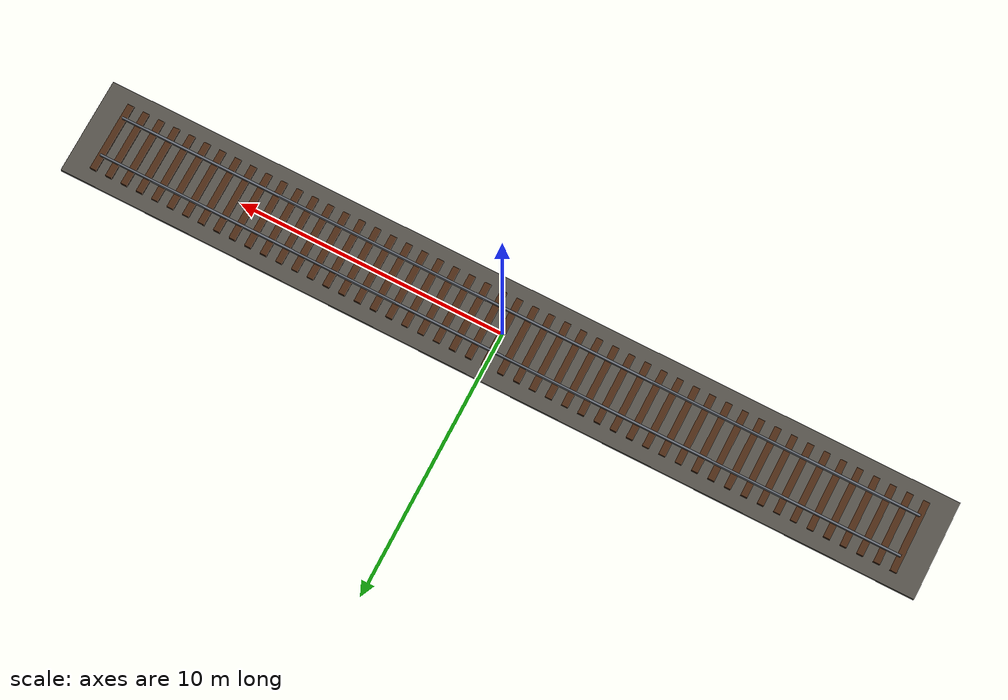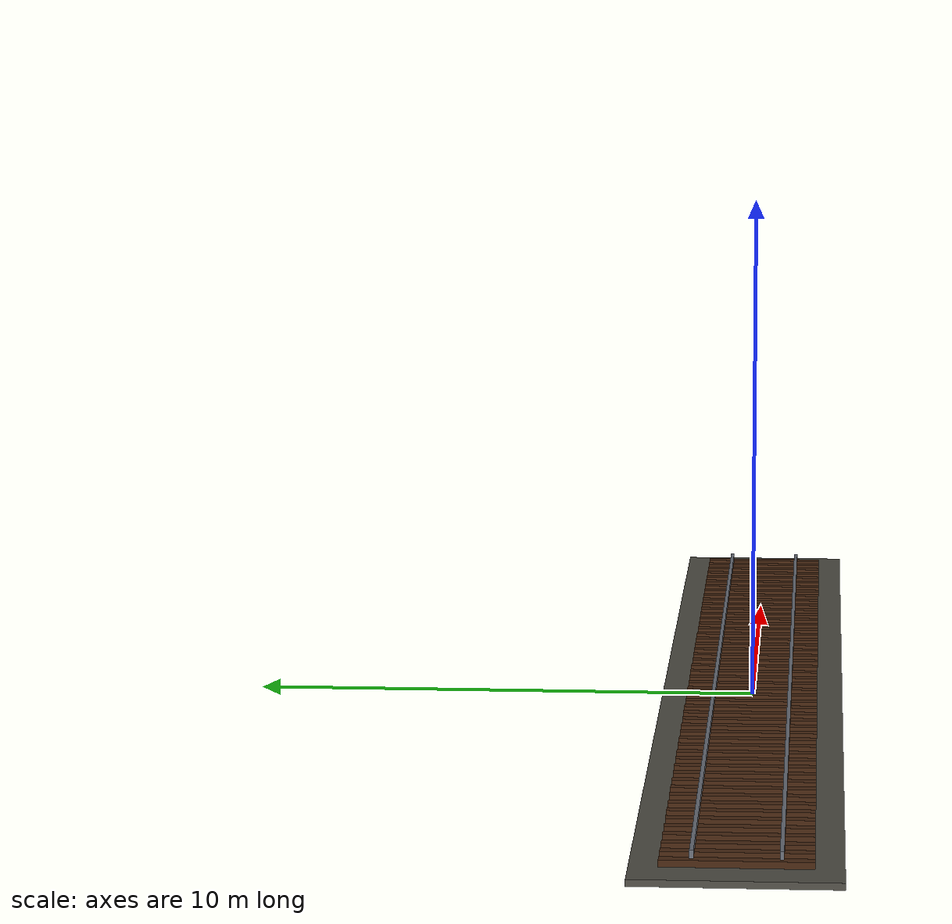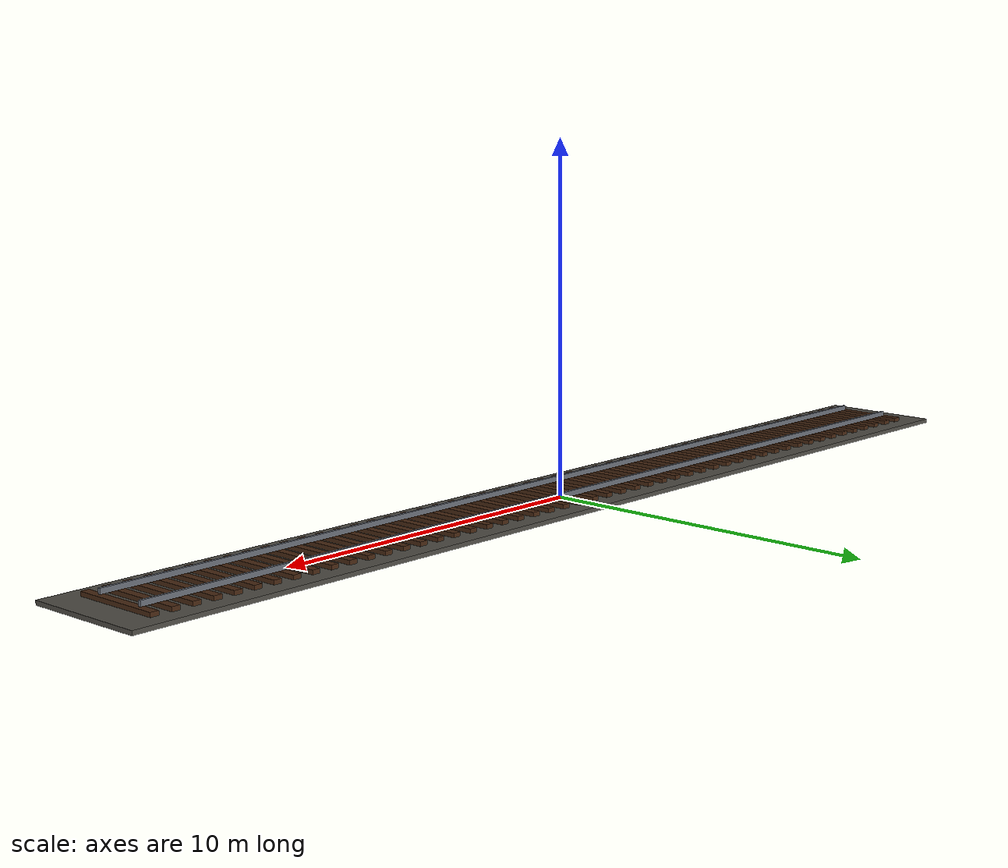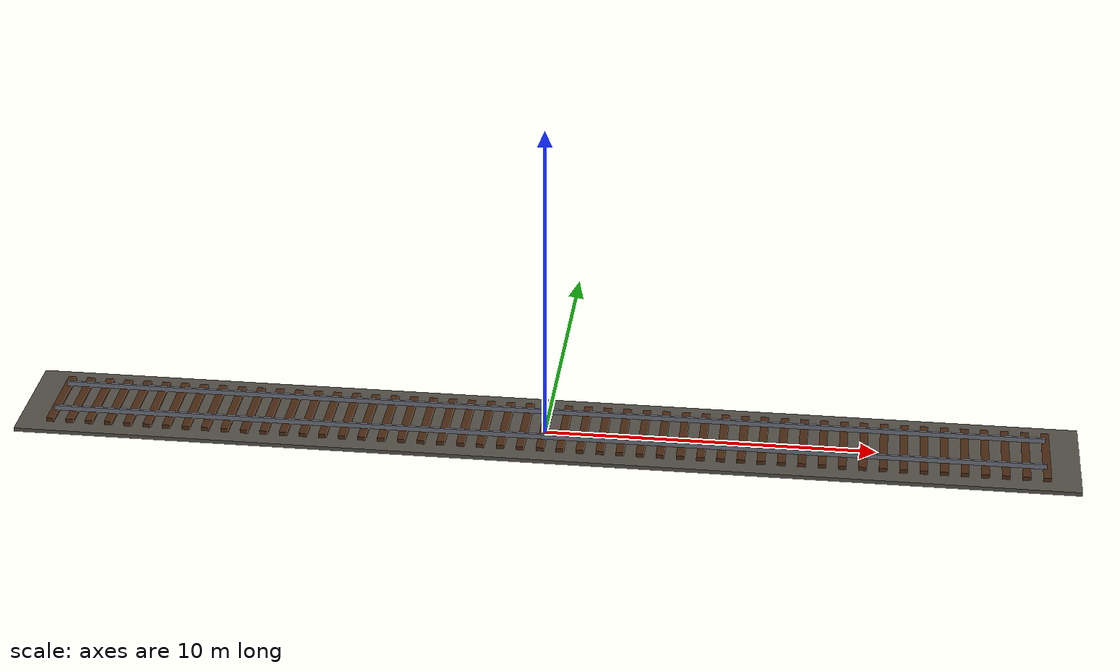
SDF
<?xml version="1.0" encoding="UTF-8"?>
<!-- Generated by tools/generate_gazebo_rail_world.py. -->
<sdf version="1.9">
  <model name="rail_track">
    <static>true</static>
    <link name="track">
      <collision name="ballast_collision">
        <pose>0 0 0.060 0 0 0</pose>
        <geometry><box><size>32.000 3.600 0.120</size></box></geometry>
      </collision>
      <visual name="ballast_visual">
        <pose>0 0 0.060 0 0 0</pose>
        <geometry><box><size>32.000 3.600 0.120</size></box></geometry>
        <material>
          <ambient>0.22 0.22 0.20 1</ambient>
          <diffuse>0.32 0.31 0.28 1</diffuse>
          <specular>0.04 0.04 0.04 1</specular>
        </material>
      </visual>
      <collision name="sleeper_000_collision">
        <pose>-15.000 0 0.160 0 0 0</pose>
        <geometry><box><size>0.240 2.600 0.160</size></box></geometry>
      </collision>
      <visual name="sleeper_000_visual">
        <pose>-15.000 0 0.160 0 0 0</pose>
        <geometry><box><size>0.240 2.600 0.160</size></box></geometry>
        <material>
          <ambient>0.20 0.11 0.055 1</ambient>
          <diffuse>0.29 0.16 0.075 1</diffuse>
          <specular>0.015 0.015 0.015 1</specular>
        </material>
      </visual>
      <collision name="sleeper_001_collision">
        <pose>-14.400 0 0.160 0 0 0</pose>
        <geometry><box><size>0.240 2.600 0.160</size></box></geometry>
      </collision>
      <visual name="sleeper_001_visual">
        <pose>-14.400 0 0.160 0 0 0</pose>
        <geometry><box><size>0.240 2.600 0.160</size></box></geometry>
        <material>
          <ambient>0.20 0.11 0.055 1</ambient>
          <diffuse>0.29 0.16 0.075 1</diffuse>
          <specular>0.015 0.015 0.015 1</specular>
        </material>
      </visual>
      <collision name="sleeper_002_collision">
        <pose>-13.800 0 0.160 0 0 0</pose>
        <geometry><box><size>0.240 2.600 0.160</size></box></geometry>
      </collision>
      <visual name="sleeper_002_visual">
        <pose>-13.800 0 0.160 0 0 0</pose>
        <geometry><box><size>0.240 2.600 0.160</size></box></geometry>
        <material>
          <ambient>0.20 0.11 0.055 1</ambient>
          <diffuse>0.29 0.16 0.075 1</diffuse>
          <specular>0.015 0.015 0.015 1</specular>
        </material>
      </visual>
      <collision name="sleeper_003_collision">
        <pose>-13.200 0 0.160 0 0 0</pose>
        <geometry><box><size>0.240 2.600 0.160</size></box></geometry>
      </collision>
      <visual name="sleeper_003_visual">
        <pose>-13.200 0 0.160 0 0 0</pose>
        <geometry><box><size>0.240 2.600 0.160</size></box></geometry>
        <material>
          <ambient>0.20 0.11 0.055 1</ambient>
          <diffuse>0.29 0.16 0.075 1</diffuse>
          <specular>0.015 0.015 0.015 1</specular>
        </material>
      </visual>
      <collision name="sleeper_004_collision">
        <pose>-12.600 0 0.160 0 0 0</pose>
        <geometry><box><size>0.240 2.600 0.160</size></box></geometry>
      </collision>
      <visual name="sleeper_004_visual">
        <pose>-12.600 0 0.160 0 0 0</pose>
        <geometry><box><size>0.240 2.600 0.160</size></box></geometry>
        <material>
          <ambient>0.20 0.11 0.055 1</ambient>
          <diffuse>0.29 0.16 0.075 1</diffuse>
          <specular>0.015 0.015 0.015 1</specular>
        </material>
      </visual>
      <collision name="sleeper_005_collision">
        <pose>-12.000 0 0.160 0 0 0</pose>
        <geometry><box><size>0.240 2.600 0.160</size></box></geometry>
      </collision>
      <visual name="sleeper_005_visual">
        <pose>-12.000 0 0.160 0 0 0</pose>
        <geometry><box><size>0.240 2.600 0.160</size></box></geometry>
        <material>
          <ambient>0.20 0.11 0.055 1</ambient>
          <diffuse>0.29 0.16 0.075 1</diffuse>
          <specular>0.015 0.015 0.015 1</specular>
        </material>
      </visual>
      <collision name="sleeper_006_collision">
        <pose>-11.400 0 0.160 0 0 0</pose>
        <geometry><box><size>0.240 2.600 0.160</size></box></geometry>
      </collision>
      <visual name="sleeper_006_visual">
        <pose>-11.400 0 0.160 0 0 0</pose>
        <geometry><box><size>0.240 2.600 0.160</size></box></geometry>
        <material>
          <ambient>0.20 0.11 0.055 1</ambient>
          <diffuse>0.29 0.16 0.075 1</diffuse>
          <specular>0.015 0.015 0.015 1</specular>
        </material>
      </visual>
      <collision name="sleeper_007_collision">
        <pose>-10.800 0 0.160 0 0 0</pose>
        <geometry><box><size>0.240 2.600 0.160</size></box></geometry>
      </collision>
      <visual name="sleeper_007_visual">
        <pose>-10.800 0 0.160 0 0 0</pose>
        <geometry><box><size>0.240 2.600 0.160</size></box></geometry>
        <material>
          <ambient>0.20 0.11 0.055 1</ambient>
          <diffuse>0.29 0.16 0.075 1</diffuse>
          <specular>0.015 0.015 0.015 1</specular>
        </material>
      </visual>
      <collision name="sleeper_008_collision">
        <pose>-10.200 0 0.160 0 0 0</pose>
        <geometry><box><size>0.240 2.600 0.160</size></box></geometry>
      </collision>
      <visual name="sleeper_008_visual">
        <pose>-10.200 0 0.160 0 0 0</pose>
        <geometry><box><size>0.240 2.600 0.160</size></box></geometry>
        <material>
          <ambient>0.20 0.11 0.055 1</ambient>
          <diffuse>0.29 0.16 0.075 1</diffuse>
          <specular>0.015 0.015 0.015 1</specular>
        </material>
      </visual>
      <collision name="sleeper_009_collision">
        <pose>-9.600 0 0.160 0 0 0</pose>
        <geometry><box><size>0.240 2.600 0.160</size></box></geometry>
      </collision>
      <visual name="sleeper_009_visual">
        <pose>-9.600 0 0.160 0 0 0</pose>
        <geometry><box><size>0.240 2.600 0.160</size></box></geometry>
        <material>
          <ambient>0.20 0.11 0.055 1</ambient>
          <diffuse>0.29 0.16 0.075 1</diffuse>
          <specular>0.015 0.015 0.015 1</specular>
        </material>
      </visual>
      <collision name="sleeper_010_collision">
        <pose>-9.000 0 0.160 0 0 0</pose>
        <geometry><box><size>0.240 2.600 0.160</size></box></geometry>
      </collision>
      <visual name="sleeper_010_visual">
        <pose>-9.000 0 0.160 0 0 0</pose>
        <geometry><box><size>0.240 2.600 0.160</size></box></geometry>
        <material>
          <ambient>0.20 0.11 0.055 1</ambient>
          <diffuse>0.29 0.16 0.075 1</diffuse>
          <specular>0.015 0.015 0.015 1</specular>
        </material>
      </visual>
      <collision name="sleeper_011_collision">
        <pose>-8.400 0 0.160 0 0 0</pose>
        <geometry><box><size>0.240 2.600 0.160</size></box></geometry>
      </collision>
      <visual name="sleeper_011_visual">
        <pose>-8.400 0 0.160 0 0 0</pose>
        <geometry><box><size>0.240 2.600 0.160</size></box></geometry>
        <material>
          <ambient>0.20 0.11 0.055 1</ambient>
          <diffuse>0.29 0.16 0.075 1</diffuse>
          <specular>0.015 0.015 0.015 1</specular>
        </material>
      </visual>
      <collision name="sleeper_012_collision">
        <pose>-7.800 0 0.160 0 0 0</pose>
        <geometry><box><size>0.240 2.600 0.160</size></box></geometry>
      </collision>
      <visual name="sleeper_012_visual">
        <pose>-7.800 0 0.160 0 0 0</pose>
        <geometry><box><size>0.240 2.600 0.160</size></box></geometry>
        <material>
          <ambient>0.20 0.11 0.055 1</ambient>
          <diffuse>0.29 0.16 0.075 1</diffuse>
          <specular>0.015 0.015 0.015 1</specular>
        </material>
      </visual>
      <collision name="sleeper_013_collision">
        <pose>-7.200 0 0.160 0 0 0</pose>
        <geometry><box><size>0.240 2.600 0.160</size></box></geometry>
      </collision>
      <visual name="sleeper_013_visual">
        <pose>-7.200 0 0.160 0 0 0</pose>
        <geometry><box><size>0.240 2.600 0.160</size></box></geometry>
        <material>
          <ambient>0.20 0.11 0.055 1</ambient>
          <diffuse>0.29 0.16 0.075 1</diffuse>
          <specular>0.015 0.015 0.015 1</specular>
        </material>
      </visual>
      <collision name="sleeper_014_collision">
        <pose>-6.600 0 0.160 0 0 0</pose>
        <geometry><box><size>0.240 2.600 0.160</size></box></geometry>
      </collision>
      <visual name="sleeper_014_visual">
        <pose>-6.600 0 0.160 0 0 0</pose>
        <geometry><box><size>0.240 2.600 0.160</size></box></geometry>
        <material>
          <ambient>0.20 0.11 0.055 1</ambient>
          <diffuse>0.29 0.16 0.075 1</diffuse>
          <specular>0.015 0.015 0.015 1</specular>
        </material>
      </visual>
      <collision name="sleeper_015_collision">
        <pose>-6.000 0 0.160 0 0 0</pose>
        <geometry><box><size>0.240 2.600 0.160</size></box></geometry>
      </collision>
      <visual name="sleeper_015_visual">
        <pose>-6.000 0 0.160 0 0 0</pose>
        <geometry><box><size>0.240 2.600 0.160</size></box></geometry>
        <material>
          <ambient>0.20 0.11 0.055 1</ambient>
          <diffuse>0.29 0.16 0.075 1</diffuse>
          <specular>0.015 0.015 0.015 1</specular>
        </material>
      </visual>
      <collision name="sleeper_016_collision">
        <pose>-5.400 0 0.160 0 0 0</pose>
        <geometry><box><size>0.240 2.600 0.160</size></box></geometry>
      </collision>
      <visual name="sleeper_016_visual">
        <pose>-5.400 0 0.160 0 0 0</pose>
        <geometry><box><size>0.240 2.600 0.160</size></box></geometry>
        <material>
          <ambient>0.20 0.11 0.055 1</ambient>
          <diffuse>0.29 0.16 0.075 1</diffuse>
          <specular>0.015 0.015 0.015 1</specular>
        </material>
      </visual>
      <collision name="sleeper_017_collision">
        <pose>-4.800 0 0.160 0 0 0</pose>
        <geometry><box><size>0.240 2.600 0.160</size></box></geometry>
      </collision>
      <visual name="sleeper_017_visual">
        <pose>-4.800 0 0.160 0 0 0</pose>
        <geometry><box><size>0.240 2.600 0.160</size></box></geometry>
        <material>
          <ambient>0.20 0.11 0.055 1</ambient>
          <diffuse>0.29 0.16 0.075 1</diffuse>
          <specular>0.015 0.015 0.015 1</specular>
        </material>
      </visual>
      <collision name="sleeper_018_collision">
        <pose>-4.200 0 0.160 0 0 0</pose>
        <geometry><box><size>0.240 2.600 0.160</size></box></geometry>
      </collision>
      <visual name="sleeper_018_visual">
        <pose>-4.200 0 0.160 0 0 0</pose>
        <geometry><box><size>0.240 2.600 0.160</size></box></geometry>
        <material>
          <ambient>0.20 0.11 0.055 1</ambient>
          <diffuse>0.29 0.16 0.075 1</diffuse>
          <specular>0.015 0.015 0.015 1</specular>
        </material>
      </visual>
      <collision name="sleeper_019_collision">
        <pose>-3.600 0 0.160 0 0 0</pose>
        <geometry><box><size>0.240 2.600 0.160</size></box></geometry>
      </collision>
      <visual name="sleeper_019_visual">
        <pose>-3.600 0 0.160 0 0 0</pose>
        <geometry><box><size>0.240 2.600 0.160</size></box></geometry>
        <material>
          <ambient>0.20 0.11 0.055 1</ambient>
          <diffuse>0.29 0.16 0.075 1</diffuse>
          <specular>0.015 0.015 0.015 1</specular>
        </material>
      </visual>
      <collision name="sleeper_020_collision">
        <pose>-3.000 0 0.160 0 0 0</pose>
        <geometry><box><size>0.240 2.600 0.160</size></box></geometry>
      </collision>
      <visual name="sleeper_020_visual">
        <pose>-3.000 0 0.160 0 0 0</pose>
        <geometry><box><size>0.240 2.600 0.160</size></box></geometry>
        <material>
          <ambient>0.20 0.11 0.055 1</ambient>
          <diffuse>0.29 0.16 0.075 1</diffuse>
          <specular>0.015 0.015 0.015 1</specular>
        </material>
      </visual>
      <collision name="sleeper_021_collision">
        <pose>-2.400 0 0.160 0 0 0</pose>
        <geometry><box><size>0.240 2.600 0.160</size></box></geometry>
      </collision>
      <visual name="sleeper_021_visual">
        <pose>-2.400 0 0.160 0 0 0</pose>
        <geometry><box><size>0.240 2.600 0.160</size></box></geometry>
        <material>
          <ambient>0.20 0.11 0.055 1</ambient>
          <diffuse>0.29 0.16 0.075 1</diffuse>
          <specular>0.015 0.015 0.015 1</specular>
        </material>
      </visual>
      <collision name="sleeper_022_collision">
        <pose>-1.800 0 0.160 0 0 0</pose>
        <geometry><box><size>0.240 2.600 0.160</size></box></geometry>
      </collision>
      <visual name="sleeper_022_visual">
        <pose>-1.800 0 0.160 0 0 0</pose>
        <geometry><box><size>0.240 2.600 0.160</size></box></geometry>
        <material>
          <ambient>0.20 0.11 0.055 1</ambient>
          <diffuse>0.29 0.16 0.075 1</diffuse>
          <specular>0.015 0.015 0.015 1</specular>
        </material>
      </visual>
      <collision name="sleeper_023_collision">
        <pose>-1.200 0 0.160 0 0 0</pose>
        <geometry><box><size>0.240 2.600 0.160</size></box></geometry>
      </collision>
      <visual name="sleeper_023_visual">
        <pose>-1.200 0 0.160 0 0 0</pose>
        <geometry><box><size>0.240 2.600 0.160</size></box></geometry>
        <material>
          <ambient>0.20 0.11 0.055 1</ambient>
          <diffuse>0.29 0.16 0.075 1</diffuse>
          <specular>0.015 0.015 0.015 1</specular>
        </material>
      </visual>
      <collision name="sleeper_024_collision">
        <pose>-0.600 0 0.160 0 0 0</pose>
        <geometry><box><size>0.240 2.600 0.160</size></box></geometry>
      </collision>
      <visual name="sleeper_024_visual">
        <pose>-0.600 0 0.160 0 0 0</pose>
        <geometry><box><size>0.240 2.600 0.160</size></box></geometry>
        <material>
          <ambient>0.20 0.11 0.055 1</ambient>
          <diffuse>0.29 0.16 0.075 1</diffuse>
          <specular>0.015 0.015 0.015 1</specular>
        </material>
      </visual>
      <collision name="sleeper_025_collision">
        <pose>0.000 0 0.160 0 0 0</pose>
        <geometry><box><size>0.240 2.600 0.160</size></box></geometry>
      </collision>
      <visual name="sleeper_025_visual">
        <pose>0.000 0 0.160 0 0 0</pose>
        <geometry><box><size>0.240 2.600 0.160</size></box></geometry>
        <material>
          <ambient>0.20 0.11 0.055 1</ambient>
          <diffuse>0.29 0.16 0.075 1</diffuse>
          <specular>0.015 0.015 0.015 1</specular>
        </material>
      </visual>
      <collision name="sleeper_026_collision">
        <pose>0.600 0 0.160 0 0 0</pose>
        <geometry><box><size>0.240 2.600 0.160</size></box></geometry>
      </collision>
      <visual name="sleeper_026_visual">
        <pose>0.600 0 0.160 0 0 0</pose>
        <geometry><box><size>0.240 2.600 0.160</size></box></geometry>
        <material>
          <ambient>0.20 0.11 0.055 1</ambient>
          <diffuse>0.29 0.16 0.075 1</diffuse>
          <specular>0.015 0.015 0.015 1</specular>
        </material>
      </visual>
      <collision name="sleeper_027_collision">
        <pose>1.200 0 0.160 0 0 0</pose>
        <geometry><box><size>0.240 2.600 0.160</size></box></geometry>
      </collision>
      <visual name="sleeper_027_visual">
        <pose>1.200 0 0.160 0 0 0</pose>
        <geometry><box><size>0.240 2.600 0.160</size></box></geometry>
        <material>
          <ambient>0.20 0.11 0.055 1</ambient>
          <diffuse>0.29 0.16 0.075 1</diffuse>
          <specular>0.015 0.015 0.015 1</specular>
        </material>
      </visual>
      <collision name="sleeper_028_collision">
        <pose>1.800 0 0.160 0 0 0</pose>
        <geometry><box><size>0.240 2.600 0.160</size></box></geometry>
      </collision>
      <visual name="sleeper_028_visual">
        <pose>1.800 0 0.160 0 0 0</pose>
        <geometry><box><size>0.240 2.600 0.160</size></box></geometry>
        <material>
          <ambient>0.20 0.11 0.055 1</ambient>
          <diffuse>0.29 0.16 0.075 1</diffuse>
          <specular>0.015 0.015 0.015 1</specular>
        </material>
      </visual>
      <collision name="sleeper_029_collision">
        <pose>2.400 0 0.160 0 0 0</pose>
        <geometry><box><size>0.240 2.600 0.160</size></box></geometry>
      </collision>
      <visual name="sleeper_029_visual">
        <pose>2.400 0 0.160 0 0 0</pose>
        <geometry><box><size>0.240 2.600 0.160</size></box></geometry>
        <material>
          <ambient>0.20 0.11 0.055 1</ambient>
          <diffuse>0.29 0.16 0.075 1</diffuse>
          <specular>0.015 0.015 0.015 1</specular>
        </material>
      </visual>
      <collision name="sleeper_030_collision">
        <pose>3.000 0 0.160 0 0 0</pose>
        <geometry><box><size>0.240 2.600 0.160</size></box></geometry>
      </collision>
      <visual name="sleeper_030_visual">
        <pose>3.000 0 0.160 0 0 0</pose>
        <geometry><box><size>0.240 2.600 0.160</size></box></geometry>
        <material>
          <ambient>0.20 0.11 0.055 1</ambient>
          <diffuse>0.29 0.16 0.075 1</diffuse>
          <specular>0.015 0.015 0.015 1</specular>
        </material>
      </visual>
      <collision name="sleeper_031_collision">
        <pose>3.600 0 0.160 0 0 0</pose>
        <geometry><box><size>0.240 2.600 0.160</size></box></geometry>
      </collision>
      <visual name="sleeper_031_visual">
        <pose>3.600 0 0.160 0 0 0</pose>
        <geometry><box><size>0.240 2.600 0.160</size></box></geometry>
        <material>
          <ambient>0.20 0.11 0.055 1</ambient>
          <diffuse>0.29 0.16 0.075 1</diffuse>
          <specular>0.015 0.015 0.015 1</specular>
        </material>
      </visual>
      <collision name="sleeper_032_collision">
        <pose>4.200 0 0.160 0 0 0</pose>
        <geometry><box><size>0.240 2.600 0.160</size></box></geometry>
      </collision>
      <visual name="sleeper_032_visual">
        <pose>4.200 0 0.160 0 0 0</pose>
        <geometry><box><size>0.240 2.600 0.160</size></box></geometry>
        <material>
          <ambient>0.20 0.11 0.055 1</ambient>
          <diffuse>0.29 0.16 0.075 1</diffuse>
          <specular>0.015 0.015 0.015 1</specular>
        </material>
      </visual>
      <collision name="sleeper_033_collision">
        <pose>4.800 0 0.160 0 0 0</pose>
        <geometry><box><size>0.240 2.600 0.160</size></box></geometry>
      </collision>
      <visual name="sleeper_033_visual">
        <pose>4.800 0 0.160 0 0 0</pose>
        <geometry><box><size>0.240 2.600 0.160</size></box></geometry>
        <material>
          <ambient>0.20 0.11 0.055 1</ambient>
          <diffuse>0.29 0.16 0.075 1</diffuse>
          <specular>0.015 0.015 0.015 1</specular>
        </material>
      </visual>
      <collision name="sleeper_034_collision">
        <pose>5.400 0 0.160 0 0 0</pose>
        <geometry><box><size>0.240 2.600 0.160</size></box></geometry>
      </collision>
      <visual name="sleeper_034_visual">
        <pose>5.400 0 0.160 0 0 0</pose>
        <geometry><box><size>0.240 2.600 0.160</size></box></geometry>
        <material>
          <ambient>0.20 0.11 0.055 1</ambient>
          <diffuse>0.29 0.16 0.075 1</diffuse>
          <specular>0.015 0.015 0.015 1</specular>
        </material>
      </visual>
      <collision name="sleeper_035_collision">
        <pose>6.000 0 0.160 0 0 0</pose>
        <geometry><box><size>0.240 2.600 0.160</size></box></geometry>
      </collision>
      <visual name="sleeper_035_visual">
        <pose>6.000 0 0.160 0 0 0</pose>
        <geometry><box><size>0.240 2.600 0.160</size></box></geometry>
        <material>
          <ambient>0.20 0.11 0.055 1</ambient>
          <diffuse>0.29 0.16 0.075 1</diffuse>
          <specular>0.015 0.015 0.015 1</specular>
        </material>
      </visual>
      <collision name="sleeper_036_collision">
        <pose>6.600 0 0.160 0 0 0</pose>
        <geometry><box><size>0.240 2.600 0.160</size></box></geometry>
      </collision>
      <visual name="sleeper_036_visual">
        <pose>6.600 0 0.160 0 0 0</pose>
        <geometry><box><size>0.240 2.600 0.160</size></box></geometry>
        <material>
          <ambient>0.20 0.11 0.055 1</ambient>
          <diffuse>0.29 0.16 0.075 1</diffuse>
          <specular>0.015 0.015 0.015 1</specular>
        </material>
      </visual>
      <collision name="sleeper_037_collision">
        <pose>7.200 0 0.160 0 0 0</pose>
        <geometry><box><size>0.240 2.600 0.160</size></box></geometry>
      </collision>
      <visual name="sleeper_037_visual">
        <pose>7.200 0 0.160 0 0 0</pose>
        <geometry><box><size>0.240 2.600 0.160</size></box></geometry>
        <material>
          <ambient>0.20 0.11 0.055 1</ambient>
          <diffuse>0.29 0.16 0.075 1</diffuse>
          <specular>0.015 0.015 0.015 1</specular>
        </material>
      </visual>
      <collision name="sleeper_038_collision">
        <pose>7.800 0 0.160 0 0 0</pose>
        <geometry><box><size>0.240 2.600 0.160</size></box></geometry>
      </collision>
      <visual name="sleeper_038_visual">
        <pose>7.800 0 0.160 0 0 0</pose>
        <geometry><box><size>0.240 2.600 0.160</size></box></geometry>
        <material>
          <ambient>0.20 0.11 0.055 1</ambient>
          <diffuse>0.29 0.16 0.075 1</diffuse>
          <specular>0.015 0.015 0.015 1</specular>
        </material>
      </visual>
      <collision name="sleeper_039_collision">
        <pose>8.400 0 0.160 0 0 0</pose>
        <geometry><box><size>0.240 2.600 0.160</size></box></geometry>
      </collision>
      <visual name="sleeper_039_visual">
        <pose>8.400 0 0.160 0 0 0</pose>
        <geometry><box><size>0.240 2.600 0.160</size></box></geometry>
        <material>
          <ambient>0.20 0.11 0.055 1</ambient>
          <diffuse>0.29 0.16 0.075 1</diffuse>
          <specular>0.015 0.015 0.015 1</specular>
        </material>
      </visual>
      <collision name="sleeper_040_collision">
        <pose>9.000 0 0.160 0 0 0</pose>
        <geometry><box><size>0.240 2.600 0.160</size></box></geometry>
      </collision>
      <visual name="sleeper_040_visual">
        <pose>9.000 0 0.160 0 0 0</pose>
        <geometry><box><size>0.240 2.600 0.160</size></box></geometry>
        <material>
          <ambient>0.20 0.11 0.055 1</ambient>
          <diffuse>0.29 0.16 0.075 1</diffuse>
          <specular>0.015 0.015 0.015 1</specular>
        </material>
      </visual>
      <collision name="sleeper_041_collision">
        <pose>9.600 0 0.160 0 0 0</pose>
        <geometry><box><size>0.240 2.600 0.160</size></box></geometry>
      </collision>
      <visual name="sleeper_041_visual">
        <pose>9.600 0 0.160 0 0 0</pose>
        <geometry><box><size>0.240 2.600 0.160</size></box></geometry>
        <material>
          <ambient>0.20 0.11 0.055 1</ambient>
          <diffuse>0.29 0.16 0.075 1</diffuse>
          <specular>0.015 0.015 0.015 1</specular>
        </material>
      </visual>
      <collision name="sleeper_042_collision">
        <pose>10.200 0 0.160 0 0 0</pose>
        <geometry><box><size>0.240 2.600 0.160</size></box></geometry>
      </collision>
      <visual name="sleeper_042_visual">
        <pose>10.200 0 0.160 0 0 0</pose>
        <geometry><box><size>0.240 2.600 0.160</size></box></geometry>
        <material>
          <ambient>0.20 0.11 0.055 1</ambient>
          <diffuse>0.29 0.16 0.075 1</diffuse>
          <specular>0.015 0.015 0.015 1</specular>
        </material>
      </visual>
      <collision name="sleeper_043_collision">
        <pose>10.800 0 0.160 0 0 0</pose>
        <geometry><box><size>0.240 2.600 0.160</size></box></geometry>
      </collision>
      <visual name="sleeper_043_visual">
        <pose>10.800 0 0.160 0 0 0</pose>
        <geometry><box><size>0.240 2.600 0.160</size></box></geometry>
        <material>
          <ambient>0.20 0.11 0.055 1</ambient>
          <diffuse>0.29 0.16 0.075 1</diffuse>
          <specular>0.015 0.015 0.015 1</specular>
        </material>
      </visual>
      <collision name="sleeper_044_collision">
        <pose>11.400 0 0.160 0 0 0</pose>
        <geometry><box><size>0.240 2.600 0.160</size></box></geometry>
      </collision>
      <visual name="sleeper_044_visual">
        <pose>11.400 0 0.160 0 0 0</pose>
        <geometry><box><size>0.240 2.600 0.160</size></box></geometry>
        <material>
          <ambient>0.20 0.11 0.055 1</ambient>
          <diffuse>0.29 0.16 0.075 1</diffuse>
          <specular>0.015 0.015 0.015 1</specular>
        </material>
      </visual>
      <collision name="sleeper_045_collision">
        <pose>12.000 0 0.160 0 0 0</pose>
        <geometry><box><size>0.240 2.600 0.160</size></box></geometry>
      </collision>
      <visual name="sleeper_045_visual">
        <pose>12.000 0 0.160 0 0 0</pose>
        <geometry><box><size>0.240 2.600 0.160</size></box></geometry>
        <material>
          <ambient>0.20 0.11 0.055 1</ambient>
          <diffuse>0.29 0.16 0.075 1</diffuse>
          <specular>0.015 0.015 0.015 1</specular>
        </material>
      </visual>
      <collision name="sleeper_046_collision">
        <pose>12.600 0 0.160 0 0 0</pose>
        <geometry><box><size>0.240 2.600 0.160</size></box></geometry>
      </collision>
      <visual name="sleeper_046_visual">
        <pose>12.600 0 0.160 0 0 0</pose>
        <geometry><box><size>0.240 2.600 0.160</size></box></geometry>
        <material>
          <ambient>0.20 0.11 0.055 1</ambient>
          <diffuse>0.29 0.16 0.075 1</diffuse>
          <specular>0.015 0.015 0.015 1</specular>
        </material>
      </visual>
      <collision name="sleeper_047_collision">
        <pose>13.200 0 0.160 0 0 0</pose>
        <geometry><box><size>0.240 2.600 0.160</size></box></geometry>
      </collision>
      <visual name="sleeper_047_visual">
        <pose>13.200 0 0.160 0 0 0</pose>
        <geometry><box><size>0.240 2.600 0.160</size></box></geometry>
        <material>
          <ambient>0.20 0.11 0.055 1</ambient>
          <diffuse>0.29 0.16 0.075 1</diffuse>
          <specular>0.015 0.015 0.015 1</specular>
        </material>
      </visual>
      <collision name="sleeper_048_collision">
        <pose>13.800 0 0.160 0 0 0</pose>
        <geometry><box><size>0.240 2.600 0.160</size></box></geometry>
      </collision>
      <visual name="sleeper_048_visual">
        <pose>13.800 0 0.160 0 0 0</pose>
        <geometry><box><size>0.240 2.600 0.160</size></box></geometry>
        <material>
          <ambient>0.20 0.11 0.055 1</ambient>
          <diffuse>0.29 0.16 0.075 1</diffuse>
          <specular>0.015 0.015 0.015 1</specular>
        </material>
      </visual>
      <collision name="sleeper_049_collision">
        <pose>14.400 0 0.160 0 0 0</pose>
        <geometry><box><size>0.240 2.600 0.160</size></box></geometry>
      </collision>
      <visual name="sleeper_049_visual">
        <pose>14.400 0 0.160 0 0 0</pose>
        <geometry><box><size>0.240 2.600 0.160</size></box></geometry>
        <material>
          <ambient>0.20 0.11 0.055 1</ambient>
          <diffuse>0.29 0.16 0.075 1</diffuse>
          <specular>0.015 0.015 0.015 1</specular>
        </material>
      </visual>
      <collision name="sleeper_050_collision">
        <pose>15.000 0 0.160 0 0 0</pose>
        <geometry><box><size>0.240 2.600 0.160</size></box></geometry>
      </collision>
      <visual name="sleeper_050_visual">
        <pose>15.000 0 0.160 0 0 0</pose>
        <geometry><box><size>0.240 2.600 0.160</size></box></geometry>
        <material>
          <ambient>0.20 0.11 0.055 1</ambient>
          <diffuse>0.29 0.16 0.075 1</diffuse>
          <specular>0.015 0.015 0.015 1</specular>
        </material>
      </visual>
      <collision name="rail_left_collision">
        <pose>0 0.7525 0.315 0 0 0</pose>
        <geometry><box><size>30.000 0.070 0.150</size></box></geometry>
      </collision>
      <visual name="rail_left_visual">
        <pose>0 0.7525 0.315 0 0 0</pose>
        <geometry><box><size>30.000 0.070 0.150</size></box></geometry>
        <material>
          <ambient>0.24 0.25 0.27 1</ambient>
          <diffuse>0.42 0.44 0.48 1</diffuse>
          <specular>0.70 0.70 0.72 1</specular>
        </material>
      </visual>
      <collision name="rail_right_collision">
        <pose>0 -0.7525 0.315 0 0 0</pose>
        <geometry><box><size>30.000 0.070 0.150</size></box></geometry>
      </collision>
      <visual name="rail_right_visual">
        <pose>0 -0.7525 0.315 0 0 0</pose>
        <geometry><box><size>30.000 0.070 0.150</size></box></geometry>
        <material>
          <ambient>0.24 0.25 0.27 1</ambient>
          <diffuse>0.42 0.44 0.48 1</diffuse>
          <specular>0.70 0.70 0.72 1</specular>
        </material>
      </visual>
    </link>
  </model>
</sdf>
